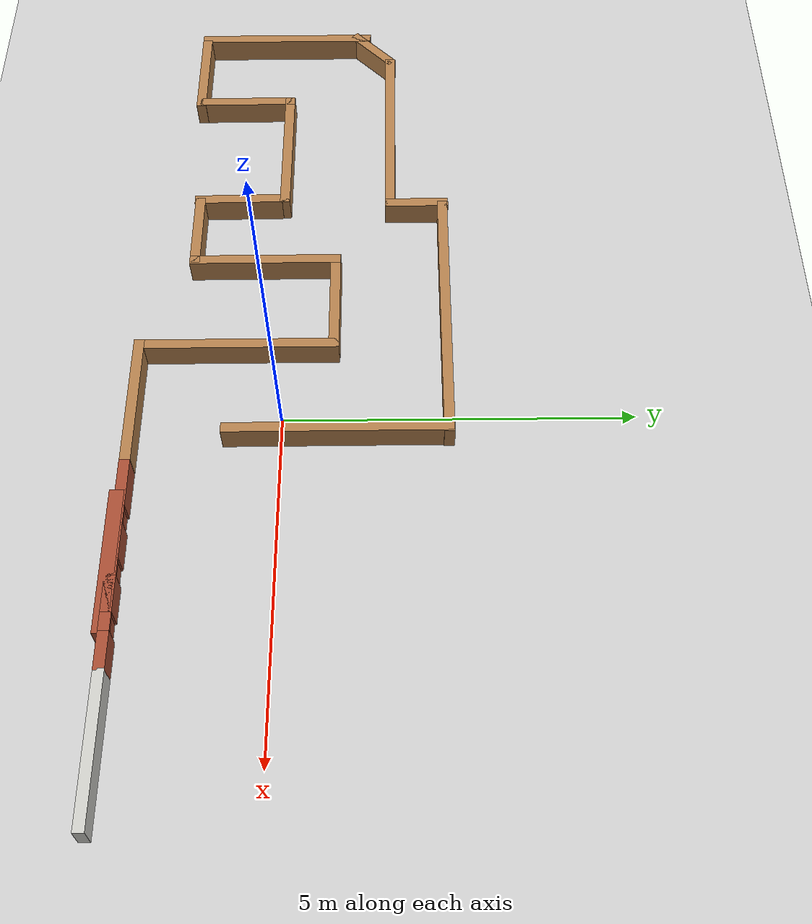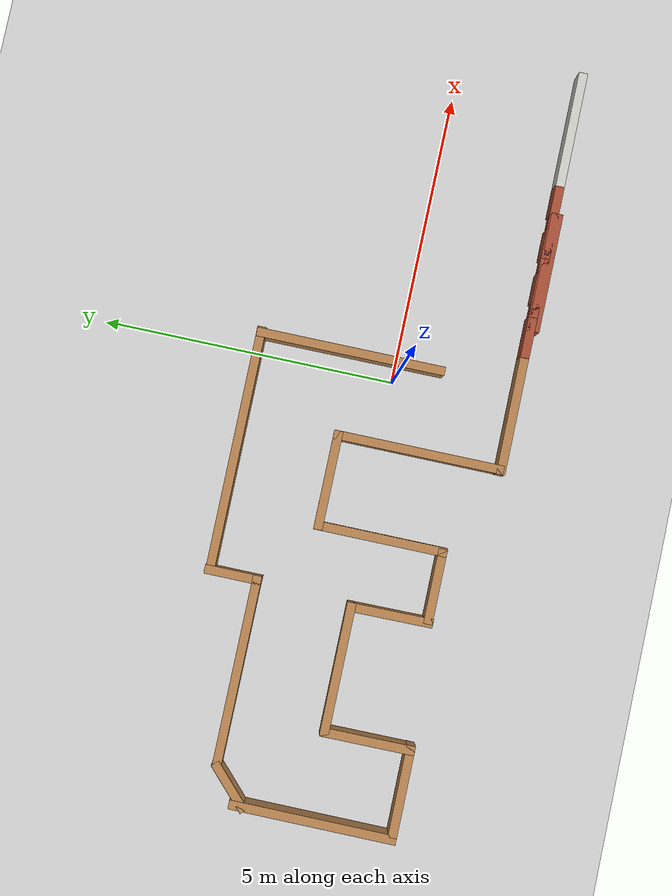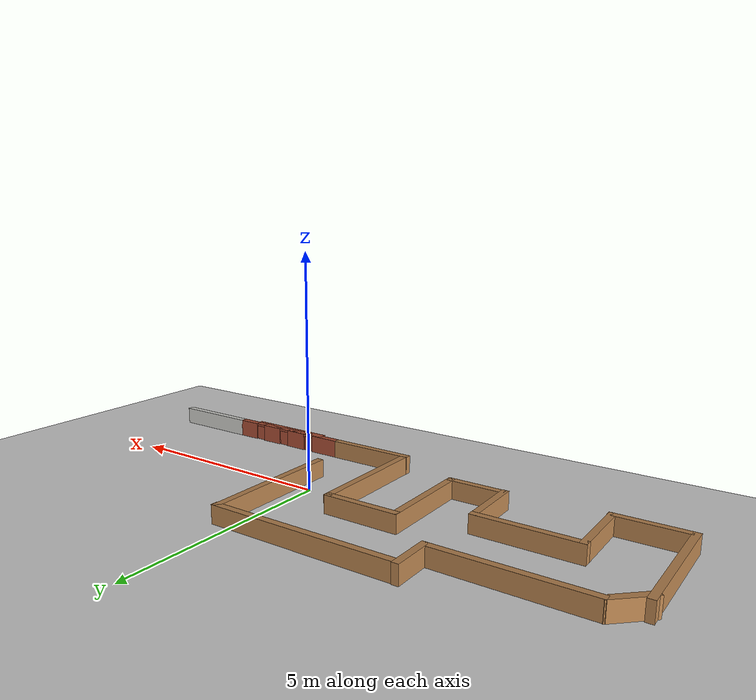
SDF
<sdf version="1.7">
	<world name="default">
		<!-- A global light source -->
		<include>
			<uri>model://sun</uri>
		</include>

		<!-- A ground plane -->
		<include>
			<uri>model://ground_plane</uri>
		</include>

		<include>
			<uri>model://maze3</uri>
		</include>

		<include>
			<uri>model://door</uri>
		</include>

		<include>
			<uri>model://last_wall</uri>
		</include>

		<include>
			<uri>model://cover</uri>
		</include>

	</world>
</sdf>

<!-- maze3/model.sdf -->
<sdf version='1.7'>
  <model name='maze3'>
    <link name='Wall_0'>
      <pose>-0.157684 -2.0677 0 0 -0 3.14159</pose>
      <self_collide>0</self_collide>
      <enable_wind>0</enable_wind>
      <kinematic>0</kinematic>
      <visual name='Wall_0_Visual'>
        <pose>0 0 0.2 0 -0 0</pose>
        <geometry>
          <box>
            <size>2 0.15 0.4</size>
          </box>
        </geometry>
        <material>
          <script>
            <uri>file://media/materials/scripts/gazebo.material</uri>
            <name>Gazebo/Wood</name>
          </script>
          <ambient>1 1 1 1</ambient>
          <shader type='pixel'/>
        </material>
        <meta>
          <layer>0</layer>
        </meta>
        <transparency>0</transparency>
        <cast_shadows>1</cast_shadows>
      </visual>
      <collision name='Wall_0_Collision'>
        <laser_retro>0</laser_retro>
        <max_contacts>10</max_contacts>
        <pose>0 0 0.2 0 -0 0</pose>
        <geometry>
          <box>
            <size>2 0.15 0.4</size>
          </box>
        </geometry>
        <surface>
          <friction>
            <ode>
              <mu>1</mu>
              <mu2>1</mu2>
              <fdir1>0 0 0</fdir1>
              <slip1>0</slip1>
              <slip2>0</slip2>
            </ode>
            <torsional>
              <coefficient>1</coefficient>
              <patch_radius>0</patch_radius>
              <surface_radius>0</surface_radius>
              <use_patch_radius>1</use_patch_radius>
              <ode>
                <slip>0</slip>
              </ode>
            </torsional>
          </friction>
          <bounce>
            <restitution_coefficient>0</restitution_coefficient>
            <threshold>1e+06</threshold>
          </bounce>
          <contact>
            <collide_without_contact>0</collide_without_contact>
            <collide_without_contact_bitmask>1</collide_without_contact_bitmask>
            <collide_bitmask>1</collide_bitmask>
            <ode>
              <soft_cfm>0</soft_cfm>
              <soft_erp>0.2</soft_erp>
              <kp>1e+13</kp>
              <kd>1</kd>
              <max_vel>0.01</max_vel>
              <min_depth>0</min_depth>
            </ode>
            <bullet>
              <split_impulse>1</split_impulse>
              <split_impulse_penetration_threshold>-0.01</split_impulse_penetration_threshold>
              <soft_cfm>0</soft_cfm>
              <soft_erp>0.2</soft_erp>
              <kp>1e+13</kp>
              <kd>1</kd>
            </bullet>
          </contact>
        </surface>
      </collision>
    </link>
    <link name='Wall_10'>
      <pose>-7.39504 -0.201105 0 0 -0 1.5708</pose>
      <self_collide>0</self_collide>
      <enable_wind>0</enable_wind>
      <kinematic>0</kinematic>
      <inertial>
        <inertia>
          <ixx>0</ixx>
          <ixy>0</ixy>
          <ixz>0</ixz>
          <iyy>0</iyy>
          <iyz>0</iyz>
          <izz>0</izz>
        </inertia>
        <mass>0</mass>
        <pose>0 0 0 0 -0 0</pose>
      </inertial>
      <visual name='Wall_10_Visual'>
        <pose>0 0 0.2 0 -0 0</pose>
        <geometry>
          <box>
            <size>2.81281 0.15 0.4</size>
          </box>
        </geometry>
        <material>
          <script>
            <uri>file://media/materials/scripts/gazebo.material</uri>
            <name>Gazebo/Wood</name>
          </script>
          <ambient>1 1 1 1</ambient>
          <shader type='pixel'/>
        </material>
        <meta>
          <layer>0</layer>
        </meta>
        <transparency>0</transparency>
        <cast_shadows>1</cast_shadows>
      </visual>
      <collision name='Wall_10_Collision'>
        <laser_retro>0</laser_retro>
        <max_contacts>10</max_contacts>
        <pose>0 0 0.2 0 -0 0</pose>
        <geometry>
          <box>
            <size>2.81281 0.15 0.4</size>
          </box>
        </geometry>
        <surface>
          <friction>
            <ode>
              <mu>1</mu>
              <mu2>1</mu2>
              <fdir1>0 0 0</fdir1>
              <slip1>0</slip1>
              <slip2>0</slip2>
            </ode>
            <torsional>
              <coefficient>1</coefficient>
              <patch_radius>0</patch_radius>
              <surface_radius>0</surface_radius>
              <use_patch_radius>1</use_patch_radius>
              <ode>
                <slip>0</slip>
              </ode>
            </torsional>
          </friction>
          <bounce>
            <restitution_coefficient>0</restitution_coefficient>
            <threshold>1e+06</threshold>
          </bounce>
          <contact>
            <collide_without_contact>0</collide_without_contact>
            <collide_without_contact_bitmask>1</collide_without_contact_bitmask>
            <collide_bitmask>1</collide_bitmask>
            <ode>
              <soft_cfm>0</soft_cfm>
              <soft_erp>0.2</soft_erp>
              <kp>1e+13</kp>
              <kd>1</kd>
              <max_vel>0.01</max_vel>
              <min_depth>0</min_depth>
            </ode>
            <bullet>
              <split_impulse>1</split_impulse>
              <split_impulse_penetration_threshold>-0.01</split_impulse_penetration_threshold>
              <soft_cfm>0</soft_cfm>
              <soft_erp>0.2</soft_erp>
              <kp>1e+13</kp>
              <kd>1</kd>
            </bullet>
          </contact>
        </surface>
      </collision>
    </link>
    <link name='Wall_11'>
      <pose>-5.25603 1.53381 0 0 -0 0</pose>
      <self_collide>0</self_collide>
      <enable_wind>0</enable_wind>
      <kinematic>0</kinematic>
      <inertial>
        <inertia>
          <ixx>0</ixx>
          <ixy>0</ixy>
          <ixz>0</ixz>
          <iyy>0</iyy>
          <iyz>0</iyz>
          <izz>0</izz>
        </inertia>
        <mass>0</mass>
        <pose>0 0 0 0 -0 0</pose>
      </inertial>
      <visual name='Wall_11_Visual'>
        <pose>0 0 0.2 0 -0 0</pose>
        <geometry>
          <box>
            <size>3.22734 0.15 0.4</size>
          </box>
        </geometry>
        <material>
          <script>
            <uri>file://media/materials/scripts/gazebo.material</uri>
            <name>Gazebo/Wood</name>
          </script>
          <ambient>1 1 1 1</ambient>
          <shader type='pixel'/>
        </material>
        <meta>
          <layer>0</layer>
        </meta>
        <transparency>0</transparency>
        <cast_shadows>1</cast_shadows>
      </visual>
      <collision name='Wall_11_Collision'>
        <laser_retro>0</laser_retro>
        <max_contacts>10</max_contacts>
        <pose>0 0 0.2 0 -0 0</pose>
        <geometry>
          <box>
            <size>3.22734 0.15 0.4</size>
          </box>
        </geometry>
        <surface>
          <friction>
            <ode>
              <mu>1</mu>
              <mu2>1</mu2>
              <fdir1>0 0 0</fdir1>
              <slip1>0</slip1>
              <slip2>0</slip2>
            </ode>
            <torsional>
              <coefficient>1</coefficient>
              <patch_radius>0</patch_radius>
              <surface_radius>0</surface_radius>
              <use_patch_radius>1</use_patch_radius>
              <ode>
                <slip>0</slip>
              </ode>
            </torsional>
          </friction>
          <bounce>
            <restitution_coefficient>0</restitution_coefficient>
            <threshold>1e+06</threshold>
          </bounce>
          <contact>
            <collide_without_contact>0</collide_without_contact>
            <collide_without_contact_bitmask>1</collide_without_contact_bitmask>
            <collide_bitmask>1</collide_bitmask>
            <ode>
              <soft_cfm>0</soft_cfm>
              <soft_erp>0.2</soft_erp>
              <kp>1e+13</kp>
              <kd>1</kd>
              <max_vel>0.01</max_vel>
              <min_depth>0</min_depth>
            </ode>
            <bullet>
              <split_impulse>1</split_impulse>
              <split_impulse_penetration_threshold>-0.01</split_impulse_penetration_threshold>
              <soft_cfm>0</soft_cfm>
              <soft_erp>0.2</soft_erp>
              <kp>1e+13</kp>
              <kd>1</kd>
            </bullet>
          </contact>
        </surface>
      </collision>
    </link>
    <link name='Wall_12'>
      <pose>-3.7155 1.93947 0 0 -0 1.5708</pose>
      <self_collide>0</self_collide>
      <enable_wind>0</enable_wind>
      <kinematic>0</kinematic>
      <inertial>
        <inertia>
          <ixx>0</ixx>
          <ixy>0</ixy>
          <ixz>0</ixz>
          <iyy>0</iyy>
          <iyz>0</iyz>
          <izz>0</izz>
        </inertia>
        <mass>0</mass>
        <pose>0 0 0 0 -0 0</pose>
      </inertial>
      <visual name='Wall_12_Visual'>
        <pose>0 0 0.2 0 -0 0</pose>
        <geometry>
          <box>
            <size>0.965198 0.15 0.4</size>
          </box>
        </geometry>
        <material>
          <script>
            <uri>file://media/materials/scripts/gazebo.material</uri>
            <name>Gazebo/Wood</name>
          </script>
          <ambient>1 1 1 1</ambient>
          <shader type='pixel'/>
        </material>
        <meta>
          <layer>0</layer>
        </meta>
        <transparency>0</transparency>
        <cast_shadows>1</cast_shadows>
      </visual>
      <collision name='Wall_12_Collision'>
        <laser_retro>0</laser_retro>
        <max_contacts>10</max_contacts>
        <pose>0 0 0.2 0 -0 0</pose>
        <geometry>
          <box>
            <size>0.965198 0.15 0.4</size>
          </box>
        </geometry>
        <surface>
          <friction>
            <ode>
              <mu>1</mu>
              <mu2>1</mu2>
              <fdir1>0 0 0</fdir1>
              <slip1>0</slip1>
              <slip2>0</slip2>
            </ode>
            <torsional>
              <coefficient>1</coefficient>
              <patch_radius>0</patch_radius>
              <surface_radius>0</surface_radius>
              <use_patch_radius>1</use_patch_radius>
              <ode>
                <slip>0</slip>
              </ode>
            </torsional>
          </friction>
          <bounce>
            <restitution_coefficient>0</restitution_coefficient>
            <threshold>1e+06</threshold>
          </bounce>
          <contact>
            <collide_without_contact>0</collide_without_contact>
            <collide_without_contact_bitmask>1</collide_without_contact_bitmask>
            <collide_bitmask>1</collide_bitmask>
            <ode>
              <soft_cfm>0</soft_cfm>
              <soft_erp>0.2</soft_erp>
              <kp>1e+13</kp>
              <kd>1</kd>
              <max_vel>0.01</max_vel>
              <min_depth>0</min_depth>
            </ode>
            <bullet>
              <split_impulse>1</split_impulse>
              <split_impulse_penetration_threshold>-0.01</split_impulse_penetration_threshold>
              <soft_cfm>0</soft_cfm>
              <soft_erp>0.2</soft_erp>
              <kp>1e+13</kp>
              <kd>1</kd>
            </bullet>
          </contact>
        </surface>
      </collision>
    </link>
    <link name='Wall_13'>
      <pose>-1.64529 2.34002 0 0 -0 0.003738</pose>
      <self_collide>0</self_collide>
      <enable_wind>0</enable_wind>
      <kinematic>0</kinematic>
      <inertial>
        <inertia>
          <ixx>0</ixx>
          <ixy>0</ixy>
          <ixz>0</ixz>
          <iyy>0</iyy>
          <iyz>0</iyz>
          <izz>0</izz>
        </inertia>
        <mass>0</mass>
        <pose>0 0 0 0 -0 0</pose>
      </inertial>
      <visual name='Wall_13_Visual'>
        <pose>0 0 0.2 0 -0 0</pose>
        <geometry>
          <box>
            <size>4.16604 0.15 0.4</size>
          </box>
        </geometry>
        <material>
          <script>
            <uri>file://media/materials/scripts/gazebo.material</uri>
            <name>Gazebo/Wood</name>
          </script>
          <ambient>1 1 1 1</ambient>
          <shader type='pixel'/>
        </material>
        <meta>
          <layer>0</layer>
        </meta>
        <transparency>0</transparency>
        <cast_shadows>1</cast_shadows>
      </visual>
      <collision name='Wall_13_Collision'>
        <laser_retro>0</laser_retro>
        <max_contacts>10</max_contacts>
        <pose>0 0 0.2 0 -0 0</pose>
        <geometry>
          <box>
            <size>4.16604 0.15 0.4</size>
          </box>
        </geometry>
        <surface>
          <friction>
            <ode>
              <mu>1</mu>
              <mu2>1</mu2>
              <fdir1>0 0 0</fdir1>
              <slip1>0</slip1>
              <slip2>0</slip2>
            </ode>
            <torsional>
              <coefficient>1</coefficient>
              <patch_radius>0</patch_radius>
              <surface_radius>0</surface_radius>
              <use_patch_radius>1</use_patch_radius>
              <ode>
                <slip>0</slip>
              </ode>
            </torsional>
          </friction>
          <bounce>
            <restitution_coefficient>0</restitution_coefficient>
            <threshold>1e+06</threshold>
          </bounce>
          <contact>
            <collide_without_contact>0</collide_without_contact>
            <collide_without_contact_bitmask>1</collide_without_contact_bitmask>
            <collide_bitmask>1</collide_bitmask>
            <ode>
              <soft_cfm>0</soft_cfm>
              <soft_erp>0.2</soft_erp>
              <kp>1e+13</kp>
              <kd>1</kd>
              <max_vel>0.01</max_vel>
              <min_depth>0</min_depth>
            </ode>
            <bullet>
              <split_impulse>1</split_impulse>
              <split_impulse_penetration_threshold>-0.01</split_impulse_penetration_threshold>
              <soft_cfm>0</soft_cfm>
              <soft_erp>0.2</soft_erp>
              <kp>1e+13</kp>
              <kd>1</kd>
            </bullet>
          </contact>
        </surface>
      </collision>
    </link>
    <link name='Wall_14'>
      <pose>0.341716 0.804884 0 0 0 -1.5708</pose>
      <self_collide>0</self_collide>
      <enable_wind>0</enable_wind>
      <kinematic>0</kinematic>
      <inertial>
        <inertia>
          <ixx>0</ixx>
          <ixy>0</ixy>
          <ixz>0</ixz>
          <iyy>0</iyy>
          <iyz>0</iyz>
          <izz>0</izz>
        </inertia>
        <mass>0</mass>
        <pose>0 0 0 0 -0 0</pose>
      </inertial>
      <visual name='Wall_14_Visual'>
        <pose>0 0 0.2 0 -0 0</pose>
        <geometry>
          <box>
            <size>3.2278 0.15 0.4</size>
          </box>
        </geometry>
        <material>
          <script>
            <uri>file://media/materials/scripts/gazebo.material</uri>
            <name>Gazebo/Wood</name>
          </script>
          <ambient>1 1 1 1</ambient>
          <shader type='pixel'/>
        </material>
        <meta>
          <layer>0</layer>
        </meta>
        <transparency>0</transparency>
        <cast_shadows>1</cast_shadows>
      </visual>
      <collision name='Wall_14_Collision'>
        <laser_retro>0</laser_retro>
        <max_contacts>10</max_contacts>
        <pose>0 0 0.2 0 -0 0</pose>
        <geometry>
          <box>
            <size>3.2278 0.15 0.4</size>
          </box>
        </geometry>
        <surface>
          <friction>
            <ode>
              <mu>1</mu>
              <mu2>1</mu2>
              <fdir1>0 0 0</fdir1>
              <slip1>0</slip1>
              <slip2>0</slip2>
            </ode>
            <torsional>
              <coefficient>1</coefficient>
              <patch_radius>0</patch_radius>
              <surface_radius>0</surface_radius>
              <use_patch_radius>1</use_patch_radius>
              <ode>
                <slip>0</slip>
              </ode>
            </torsional>
          </friction>
          <bounce>
            <restitution_coefficient>0</restitution_coefficient>
            <threshold>1e+06</threshold>
          </bounce>
          <contact>
            <collide_without_contact>0</collide_without_contact>
            <collide_without_contact_bitmask>1</collide_without_contact_bitmask>
            <collide_bitmask>1</collide_bitmask>
            <ode>
              <soft_cfm>0</soft_cfm>
              <soft_erp>0.2</soft_erp>
              <kp>1e+13</kp>
              <kd>1</kd>
              <max_vel>0.01</max_vel>
              <min_depth>0</min_depth>
            </ode>
            <bullet>
              <split_impulse>1</split_impulse>
              <split_impulse_penetration_threshold>-0.01</split_impulse_penetration_threshold>
              <soft_cfm>0</soft_cfm>
              <soft_erp>0.2</soft_erp>
              <kp>1e+13</kp>
              <kd>1</kd>
            </bullet>
          </contact>
        </surface>
      </collision>
    </link>
    <link name='Wall_2'>
      <pose>-1.07512 -0.657211 0 0 -0 1.5708</pose>
      <self_collide>0</self_collide>
      <enable_wind>0</enable_wind>
      <kinematic>0</kinematic>
      <inertial>
        <inertia>
          <ixx>0</ixx>
          <ixy>0</ixy>
          <ixz>0</ixz>
          <iyy>0</iyy>
          <iyz>0</iyz>
          <izz>0</izz>
        </inertia>
        <mass>0</mass>
        <pose>0 0 0 0 -0 0</pose>
      </inertial>
      <visual name='Wall_2_Visual'>
        <pose>0 0 0.2 0 -0 0</pose>
        <geometry>
          <box>
            <size>2.90393 0.15 0.4</size>
          </box>
        </geometry>
        <material>
          <script>
            <uri>file://media/materials/scripts/gazebo.material</uri>
            <name>Gazebo/Wood</name>
          </script>
          <ambient>1 1 1 1</ambient>
          <shader type='pixel'/>
        </material>
        <meta>
          <layer>0</layer>
        </meta>
        <transparency>0</transparency>
        <cast_shadows>1</cast_shadows>
      </visual>
      <collision name='Wall_2_Collision'>
        <laser_retro>0</laser_retro>
        <max_contacts>10</max_contacts>
        <pose>0 0 0.2 0 -0 0</pose>
        <geometry>
          <box>
            <size>2.90393 0.15 0.4</size>
          </box>
        </geometry>
        <surface>
          <friction>
            <ode>
              <mu>1</mu>
              <mu2>1</mu2>
              <fdir1>0 0 0</fdir1>
              <slip1>0</slip1>
              <slip2>0</slip2>
            </ode>
            <torsional>
              <coefficient>1</coefficient>
              <patch_radius>0</patch_radius>
              <surface_radius>0</surface_radius>
              <use_patch_radius>1</use_patch_radius>
              <ode>
                <slip>0</slip>
              </ode>
            </torsional>
          </friction>
          <bounce>
            <restitution_coefficient>0</restitution_coefficient>
            <threshold>1e+06</threshold>
          </bounce>
          <contact>
            <collide_without_contact>0</collide_without_contact>
            <collide_without_contact_bitmask>1</collide_without_contact_bitmask>
            <collide_bitmask>1</collide_bitmask>
            <ode>
              <soft_cfm>0</soft_cfm>
              <soft_erp>0.2</soft_erp>
              <kp>1e+13</kp>
              <kd>1</kd>
              <max_vel>0.01</max_vel>
              <min_depth>0</min_depth>
            </ode>
            <bullet>
              <split_impulse>1</split_impulse>
              <split_impulse_penetration_threshold>-0.01</split_impulse_penetration_threshold>
              <soft_cfm>0</soft_cfm>
              <soft_erp>0.2</soft_erp>
              <kp>1e+13</kp>
              <kd>1</kd>
            </bullet>
          </contact>
        </surface>
      </collision>
    </link>
    <link name='Wall_3'>
      <pose>-1.84655 0.720131 0 0 -0 3.14159</pose>
      <self_collide>0</self_collide>
      <enable_wind>0</enable_wind>
      <kinematic>0</kinematic>
      <inertial>
        <inertia>
          <ixx>0</ixx>
          <ixy>0</ixy>
          <ixz>0</ixz>
          <iyy>0</iyy>
          <iyz>0</iyz>
          <izz>0</izz>
        </inertia>
        <mass>0</mass>
        <pose>0 0 0 0 -0 0</pose>
      </inertial>
      <visual name='Wall_3_Visual'>
        <pose>0 0 0.2 0 -0 0</pose>
        <geometry>
          <box>
            <size>1.68458 0.15 0.4</size>
          </box>
        </geometry>
        <material>
          <script>
            <uri>file://media/materials/scripts/gazebo.material</uri>
            <name>Gazebo/Wood</name>
          </script>
          <ambient>1 1 1 1</ambient>
          <shader type='pixel'/>
        </material>
        <meta>
          <layer>0</layer>
        </meta>
        <transparency>0</transparency>
        <cast_shadows>1</cast_shadows>
      </visual>
      <collision name='Wall_3_Collision'>
        <laser_retro>0</laser_retro>
        <max_contacts>10</max_contacts>
        <pose>0 0 0.2 0 -0 0</pose>
        <geometry>
          <box>
            <size>1.68458 0.15 0.4</size>
          </box>
        </geometry>
        <surface>
          <friction>
            <ode>
              <mu>1</mu>
              <mu2>1</mu2>
              <fdir1>0 0 0</fdir1>
              <slip1>0</slip1>
              <slip2>0</slip2>
            </ode>
            <torsional>
              <coefficient>1</coefficient>
              <patch_radius>0</patch_radius>
              <surface_radius>0</surface_radius>
              <use_patch_radius>1</use_patch_radius>
              <ode>
                <slip>0</slip>
              </ode>
            </torsional>
          </friction>
          <bounce>
            <restitution_coefficient>0</restitution_coefficient>
            <threshold>1e+06</threshold>
          </bounce>
          <contact>
            <collide_without_contact>0</collide_without_contact>
            <collide_without_contact_bitmask>1</collide_without_contact_bitmask>
            <collide_bitmask>1</collide_bitmask>
            <ode>
              <soft_cfm>0</soft_cfm>
              <soft_erp>0.2</soft_erp>
              <kp>1e+13</kp>
              <kd>1</kd>
              <max_vel>0.01</max_vel>
              <min_depth>0</min_depth>
            </ode>
            <bullet>
              <split_impulse>1</split_impulse>
              <split_impulse_penetration_threshold>-0.01</split_impulse_penetration_threshold>
              <soft_cfm>0</soft_cfm>
              <soft_erp>0.2</soft_erp>
              <kp>1e+13</kp>
              <kd>1</kd>
            </bullet>
          </contact>
        </surface>
      </collision>
    </link>
    <link name='Wall_4'>
      <pose>-2.61827 -0.336537 0 0 0 -1.5708</pose>
      <self_collide>0</self_collide>
      <enable_wind>0</enable_wind>
      <kinematic>0</kinematic>
      <inertial>
        <inertia>
          <ixx>0</ixx>
          <ixy>0</ixy>
          <ixz>0</ixz>
          <iyy>0</iyy>
          <iyz>0</iyz>
          <izz>0</izz>
        </inertia>
        <mass>0</mass>
        <pose>0 0 0 0 -0 0</pose>
      </inertial>
      <visual name='Wall_4_Visual'>
        <pose>0 0 0.2 0 -0 0</pose>
        <geometry>
          <box>
            <size>2.2567 0.15 0.4</size>
          </box>
        </geometry>
        <material>
          <script>
            <uri>file://media/materials/scripts/gazebo.material</uri>
            <name>Gazebo/Wood</name>
          </script>
          <ambient>1 1 1 1</ambient>
          <shader type='pixel'/>
        </material>
        <meta>
          <layer>0</layer>
        </meta>
        <transparency>0</transparency>
        <cast_shadows>1</cast_shadows>
      </visual>
      <collision name='Wall_4_Collision'>
        <laser_retro>0</laser_retro>
        <max_contacts>10</max_contacts>
        <pose>0 0 0.2 0 -0 0</pose>
        <geometry>
          <box>
            <size>2.2567 0.15 0.4</size>
          </box>
        </geometry>
        <surface>
          <friction>
            <ode>
              <mu>1</mu>
              <mu2>1</mu2>
              <fdir1>0 0 0</fdir1>
              <slip1>0</slip1>
              <slip2>0</slip2>
            </ode>
            <torsional>
              <coefficient>1</coefficient>
              <patch_radius>0</patch_radius>
              <surface_radius>0</surface_radius>
              <use_patch_radius>1</use_patch_radius>
              <ode>
                <slip>0</slip>
              </ode>
            </torsional>
          </friction>
          <bounce>
            <restitution_coefficient>0</restitution_coefficient>
            <threshold>1e+06</threshold>
          </bounce>
          <contact>
            <collide_without_contact>0</collide_without_contact>
            <collide_without_contact_bitmask>1</collide_without_contact_bitmask>
            <collide_bitmask>1</collide_bitmask>
            <ode>
              <soft_cfm>0</soft_cfm>
              <soft_erp>0.2</soft_erp>
              <kp>1e+13</kp>
              <kd>1</kd>
              <max_vel>0.01</max_vel>
              <min_depth>0</min_depth>
            </ode>
            <bullet>
              <split_impulse>1</split_impulse>
              <split_impulse_penetration_threshold>-0.01</split_impulse_penetration_threshold>
              <soft_cfm>0</soft_cfm>
              <soft_erp>0.2</soft_erp>
              <kp>1e+13</kp>
              <kd>1</kd>
            </bullet>
          </contact>
        </surface>
      </collision>
    </link>
    <link name='Wall_5'>
      <pose>-3.2005 -1.38993 0 0 -0 3.14159</pose>
      <self_collide>0</self_collide>
      <enable_wind>0</enable_wind>
      <kinematic>0</kinematic>
      <inertial>
        <inertia>
          <ixx>0</ixx>
          <ixy>0</ixy>
          <ixz>0</ixz>
          <iyy>0</iyy>
          <iyz>0</iyz>
          <izz>0</izz>
        </inertia>
        <mass>0</mass>
        <pose>0 0 0 0 -0 0</pose>
      </inertial>
      <visual name='Wall_5_Visual'>
        <pose>0 0 0.2 0 -0 0</pose>
        <geometry>
          <box>
            <size>1.26662 0.15 0.4</size>
          </box>
        </geometry>
        <material>
          <script>
            <uri>file://media/materials/scripts/gazebo.material</uri>
            <name>Gazebo/Wood</name>
          </script>
          <ambient>1 1 1 1</ambient>
          <shader type='pixel'/>
        </material>
        <meta>
          <layer>0</layer>
        </meta>
        <transparency>0</transparency>
        <cast_shadows>1</cast_shadows>
      </visual>
      <collision name='Wall_5_Collision'>
        <laser_retro>0</laser_retro>
        <max_contacts>10</max_contacts>
        <pose>0 0 0.2 0 -0 0</pose>
        <geometry>
          <box>
            <size>1.26662 0.15 0.4</size>
          </box>
        </geometry>
        <surface>
          <friction>
            <ode>
              <mu>1</mu>
              <mu2>1</mu2>
              <fdir1>0 0 0</fdir1>
              <slip1>0</slip1>
              <slip2>0</slip2>
            </ode>
            <torsional>
              <coefficient>1</coefficient>
              <patch_radius>0</patch_radius>
              <surface_radius>0</surface_radius>
              <use_patch_radius>1</use_patch_radius>
              <ode>
                <slip>0</slip>
              </ode>
            </torsional>
          </friction>
          <bounce>
            <restitution_coefficient>0</restitution_coefficient>
            <threshold>1e+06</threshold>
          </bounce>
          <contact>
            <collide_without_contact>0</collide_without_contact>
            <collide_without_contact_bitmask>1</collide_without_contact_bitmask>
            <collide_bitmask>1</collide_bitmask>
            <ode>
              <soft_cfm>0</soft_cfm>
              <soft_erp>0.2</soft_erp>
              <kp>1e+13</kp>
              <kd>1</kd>
              <max_vel>0.01</max_vel>
              <min_depth>0</min_depth>
            </ode>
            <bullet>
              <split_impulse>1</split_impulse>
              <split_impulse_penetration_threshold>-0.01</split_impulse_penetration_threshold>
              <soft_cfm>0</soft_cfm>
              <soft_erp>0.2</soft_erp>
              <kp>1e+13</kp>
              <kd>1</kd>
            </bullet>
          </contact>
        </surface>
      </collision>
    </link>
    <link name='Wall_6'>
      <pose>-3.81693 -0.748232 0 0 -0 1.58161</pose>
      <self_collide>0</self_collide>
      <enable_wind>0</enable_wind>
      <kinematic>0</kinematic>
      <inertial>
        <inertia>
          <ixx>0</ixx>
          <ixy>0</ixy>
          <ixz>0</ixz>
          <iyy>0</iyy>
          <iyz>0</iyz>
          <izz>0</izz>
        </inertia>
        <mass>0</mass>
        <pose>0 0 0 0 -0 0</pose>
      </inertial>
      <visual name='Wall_6_Visual'>
        <pose>0 0 0.2 0 -0 0</pose>
        <geometry>
          <box>
            <size>1.45573 0.15 0.4</size>
          </box>
        </geometry>
        <material>
          <script>
            <uri>file://media/materials/scripts/gazebo.material</uri>
            <name>Gazebo/Wood</name>
          </script>
          <ambient>1 1 1 1</ambient>
          <shader type='pixel'/>
        </material>
        <meta>
          <layer>0</layer>
        </meta>
        <transparency>0</transparency>
        <cast_shadows>1</cast_shadows>
      </visual>
      <collision name='Wall_6_Collision'>
        <laser_retro>0</laser_retro>
        <max_contacts>10</max_contacts>
        <pose>0 0 0.2 0 -0 0</pose>
        <geometry>
          <box>
            <size>1.45573 0.15 0.4</size>
          </box>
        </geometry>
        <surface>
          <friction>
            <ode>
              <mu>1</mu>
              <mu2>1</mu2>
              <fdir1>0 0 0</fdir1>
              <slip1>0</slip1>
              <slip2>0</slip2>
            </ode>
            <torsional>
              <coefficient>1</coefficient>
              <patch_radius>0</patch_radius>
              <surface_radius>0</surface_radius>
              <use_patch_radius>1</use_patch_radius>
              <ode>
                <slip>0</slip>
              </ode>
            </torsional>
          </friction>
          <bounce>
            <restitution_coefficient>0</restitution_coefficient>
            <threshold>1e+06</threshold>
          </bounce>
          <contact>
            <collide_without_contact>0</collide_without_contact>
            <collide_without_contact_bitmask>1</collide_without_contact_bitmask>
            <collide_bitmask>1</collide_bitmask>
            <ode>
              <soft_cfm>0</soft_cfm>
              <soft_erp>0.2</soft_erp>
              <kp>1e+13</kp>
              <kd>1</kd>
              <max_vel>0.01</max_vel>
              <min_depth>0</min_depth>
            </ode>
            <bullet>
              <split_impulse>1</split_impulse>
              <split_impulse_penetration_threshold>-0.01</split_impulse_penetration_threshold>
              <soft_cfm>0</soft_cfm>
              <soft_erp>0.2</soft_erp>
              <kp>1e+13</kp>
              <kd>1</kd>
            </bullet>
          </contact>
        </surface>
      </collision>
    </link>
    <link name='Wall_7'>
      <pose>-4.87359 -0.08943 0 0 -0 3.14159</pose>
      <self_collide>0</self_collide>
      <enable_wind>0</enable_wind>
      <kinematic>0</kinematic>
      <visual name='Wall_7_Visual'>
        <pose>0 0 0.2 0 -0 0</pose>
        <geometry>
          <box>
            <size>2.25 0.15 0.4</size>
          </box>
        </geometry>
        <material>
          <script>
            <uri>file://media/materials/scripts/gazebo.material</uri>
            <name>Gazebo/Wood</name>
          </script>
          <ambient>1 1 1 1</ambient>
          <shader type='pixel'/>
        </material>
        <meta>
          <layer>0</layer>
        </meta>
        <transparency>0</transparency>
        <cast_shadows>1</cast_shadows>
      </visual>
      <collision name='Wall_7_Collision'>
        <laser_retro>0</laser_retro>
        <max_contacts>10</max_contacts>
        <pose>0 0 0.2 0 -0 0</pose>
        <geometry>
          <box>
            <size>2.25 0.15 0.4</size>
          </box>
        </geometry>
        <surface>
          <friction>
            <ode>
              <mu>1</mu>
              <mu2>1</mu2>
              <fdir1>0 0 0</fdir1>
              <slip1>0</slip1>
              <slip2>0</slip2>
            </ode>
            <torsional>
              <coefficient>1</coefficient>
              <patch_radius>0</patch_radius>
              <surface_radius>0</surface_radius>
              <use_patch_radius>1</use_patch_radius>
              <ode>
                <slip>0</slip>
              </ode>
            </torsional>
          </friction>
          <bounce>
            <restitution_coefficient>0</restitution_coefficient>
            <threshold>1e+06</threshold>
          </bounce>
          <contact>
            <collide_without_contact>0</collide_without_contact>
            <collide_without_contact_bitmask>1</collide_without_contact_bitmask>
            <collide_bitmask>1</collide_bitmask>
            <ode>
              <soft_cfm>0</soft_cfm>
              <soft_erp>0.2</soft_erp>
              <kp>1e+13</kp>
              <kd>1</kd>
              <max_vel>0.01</max_vel>
              <min_depth>0</min_depth>
            </ode>
            <bullet>
              <split_impulse>1</split_impulse>
              <split_impulse_penetration_threshold>-0.01</split_impulse_penetration_threshold>
              <soft_cfm>0</soft_cfm>
              <soft_erp>0.2</soft_erp>
              <kp>1e+13</kp>
              <kd>1</kd>
            </bullet>
          </contact>
        </surface>
      </collision>
    </link>
    <link name='Wall_8'>
      <pose>-5.91786 -0.810561 0 0 0 -1.56483</pose>
      <self_collide>0</self_collide>
      <enable_wind>0</enable_wind>
      <kinematic>0</kinematic>
      <inertial>
        <inertia>
          <ixx>0</ixx>
          <ixy>0</ixy>
          <ixz>0</ixz>
          <iyy>0</iyy>
          <iyz>0</iyz>
          <izz>0</izz>
        </inertia>
        <mass>0</mass>
        <pose>0 0 0 0 -0 0</pose>
      </inertial>
      <visual name='Wall_8_Visual'>
        <pose>0 0 0.2 0 -0 0</pose>
        <geometry>
          <box>
            <size>1.58846 0.15 0.4</size>
          </box>
        </geometry>
        <material>
          <script>
            <uri>file://media/materials/scripts/gazebo.material</uri>
            <name>Gazebo/Wood</name>
          </script>
          <ambient>1 1 1 1</ambient>
          <shader type='pixel'/>
        </material>
        <meta>
          <layer>0</layer>
        </meta>
        <transparency>0</transparency>
        <cast_shadows>1</cast_shadows>
      </visual>
      <collision name='Wall_8_Collision'>
        <laser_retro>0</laser_retro>
        <max_contacts>10</max_contacts>
        <pose>0 0 0.2 0 -0 0</pose>
        <geometry>
          <box>
            <size>1.58846 0.15 0.4</size>
          </box>
        </geometry>
        <surface>
          <friction>
            <ode>
              <mu>1</mu>
              <mu2>1</mu2>
              <fdir1>0 0 0</fdir1>
              <slip1>0</slip1>
              <slip2>0</slip2>
            </ode>
            <torsional>
              <coefficient>1</coefficient>
              <patch_radius>0</patch_radius>
              <surface_radius>0</surface_radius>
              <use_patch_radius>1</use_patch_radius>
              <ode>
                <slip>0</slip>
              </ode>
            </torsional>
          </friction>
          <bounce>
            <restitution_coefficient>0</restitution_coefficient>
            <threshold>1e+06</threshold>
          </bounce>
          <contact>
            <collide_without_contact>0</collide_without_contact>
            <collide_without_contact_bitmask>1</collide_without_contact_bitmask>
            <collide_bitmask>1</collide_bitmask>
            <ode>
              <soft_cfm>0</soft_cfm>
              <soft_erp>0.2</soft_erp>
              <kp>1e+13</kp>
              <kd>1</kd>
              <max_vel>0.01</max_vel>
              <min_depth>0</min_depth>
            </ode>
            <bullet>
              <split_impulse>1</split_impulse>
              <split_impulse_penetration_threshold>-0.01</split_impulse_penetration_threshold>
              <soft_cfm>0</soft_cfm>
              <soft_erp>0.2</soft_erp>
              <kp>1e+13</kp>
              <kd>1</kd>
            </bullet>
          </contact>
        </surface>
      </collision>
    </link>
    <link name='Wall_9'>
      <pose>-6.59891 -1.53477 0 0 -0 3.14159</pose>
      <self_collide>0</self_collide>
      <enable_wind>0</enable_wind>
      <kinematic>0</kinematic>
      <inertial>
        <inertia>
          <ixx>0</ixx>
          <ixy>0</ixy>
          <ixz>0</ixz>
          <iyy>0</iyy>
          <iyz>0</iyz>
          <izz>0</izz>
        </inertia>
        <mass>0</mass>
        <pose>0 0 0 0 -0 0</pose>
      </inertial>
      <visual name='Wall_9_Visual'>
        <pose>0 0 0.2 0 -0 0</pose>
        <geometry>
          <box>
            <size>1.52761 0.15 0.4</size>
          </box>
        </geometry>
        <material>
          <script>
            <uri>file://media/materials/scripts/gazebo.material</uri>
            <name>Gazebo/Wood</name>
          </script>
          <ambient>1 1 1 1</ambient>
          <shader type='pixel'/>
        </material>
        <meta>
          <layer>0</layer>
        </meta>
        <transparency>0</transparency>
        <cast_shadows>1</cast_shadows>
      </visual>
      <collision name='Wall_9_Collision'>
        <laser_retro>0</laser_retro>
        <max_contacts>10</max_contacts>
        <pose>0 0 0.2 0 -0 0</pose>
        <geometry>
          <box>
            <size>1.52761 0.15 0.4</size>
          </box>
        </geometry>
        <surface>
          <friction>
            <ode>
              <mu>1</mu>
              <mu2>1</mu2>
              <fdir1>0 0 0</fdir1>
              <slip1>0</slip1>
              <slip2>0</slip2>
            </ode>
            <torsional>
              <coefficient>1</coefficient>
              <patch_radius>0</patch_radius>
              <surface_radius>0</surface_radius>
              <use_patch_radius>1</use_patch_radius>
              <ode>
                <slip>0</slip>
              </ode>
            </torsional>
          </friction>
          <bounce>
            <restitution_coefficient>0</restitution_coefficient>
            <threshold>1e+06</threshold>
          </bounce>
          <contact>
            <collide_without_contact>0</collide_without_contact>
            <collide_without_contact_bitmask>1</collide_without_contact_bitmask>
            <collide_bitmask>1</collide_bitmask>
            <ode>
              <soft_cfm>0</soft_cfm>
              <soft_erp>0.2</soft_erp>
              <kp>1e+13</kp>
              <kd>1</kd>
              <max_vel>0.01</max_vel>
              <min_depth>0</min_depth>
            </ode>
            <bullet>
              <split_impulse>1</split_impulse>
              <split_impulse_penetration_threshold>-0.01</split_impulse_penetration_threshold>
              <soft_cfm>0</soft_cfm>
              <soft_erp>0.2</soft_erp>
              <kp>1e+13</kp>
              <kd>1</kd>
            </bullet>
          </contact>
        </surface>
      </collision>
    </link>
    <link name='Wall_9_clone'>
      <pose>-7.12565 1.2513 0 0 -0 -2.37684</pose>
      <self_collide>0</self_collide>
      <enable_wind>0</enable_wind>
      <kinematic>0</kinematic>
      <inertial>
        <inertia>
          <ixx>0</ixx>
          <ixy>0</ixy>
          <ixz>0</ixz>
          <iyy>0</iyy>
          <iyz>0</iyz>
          <izz>0</izz>
        </inertia>
        <mass>0</mass>
        <pose>0 0 0 0 -0 0</pose>
      </inertial>
      <visual name='Wall_9_Visual'>
        <pose>0 0 0.2 0 -0 0</pose>
        <geometry>
          <box>
            <size>0.920325 0.15 0.4</size>
          </box>
        </geometry>
        <material>
          <script>
            <uri>file://media/materials/scripts/gazebo.material</uri>
            <name>Gazebo/Wood</name>
          </script>
          <ambient>1 1 1 1</ambient>
          <shader type='pixel'/>
        </material>
        <meta>
          <layer>0</layer>
        </meta>
        <transparency>0</transparency>
        <cast_shadows>1</cast_shadows>
      </visual>
      <collision name='Wall_9_Collision'>
        <laser_retro>0</laser_retro>
        <max_contacts>10</max_contacts>
        <pose>0 0 0.2 0 -0 0</pose>
        <geometry>
          <box>
            <size>0.920325 0.15 0.4</size>
          </box>
        </geometry>
        <surface>
          <friction>
            <ode>
              <mu>1</mu>
              <mu2>1</mu2>
              <fdir1>0 0 0</fdir1>
              <slip1>0</slip1>
              <slip2>0</slip2>
            </ode>
            <torsional>
              <coefficient>1</coefficient>
              <patch_radius>0</patch_radius>
              <surface_radius>0</surface_radius>
              <use_patch_radius>1</use_patch_radius>
              <ode>
                <slip>0</slip>
              </ode>
            </torsional>
          </friction>
          <bounce>
            <restitution_coefficient>0</restitution_coefficient>
            <threshold>1e+06</threshold>
          </bounce>
          <contact>
            <collide_without_contact>0</collide_without_contact>
            <collide_without_contact_bitmask>1</collide_without_contact_bitmask>
            <collide_bitmask>1</collide_bitmask>
            <ode>
              <soft_cfm>0</soft_cfm>
              <soft_erp>0.2</soft_erp>
              <kp>1e+13</kp>
              <kd>1</kd>
              <max_vel>0.01</max_vel>
              <min_depth>0</min_depth>
            </ode>
            <bullet>
              <split_impulse>1</split_impulse>
              <split_impulse_penetration_threshold>-0.01</split_impulse_penetration_threshold>
              <soft_cfm>0</soft_cfm>
              <soft_erp>0.2</soft_erp>
              <kp>1e+13</kp>
              <kd>1</kd>
            </bullet>
          </contact>
        </surface>
      </collision>
    </link>
    <static>1</static>
    <allow_auto_disable>1</allow_auto_disable>
  </model>
</sdf>

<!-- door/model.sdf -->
<sdf version='1.7'>
  <model name='door'>
    <pose>1.9225 -1.0725 0 0 -0 0</pose>
    <link name='Wall_2'>
      <pose>0.4225 -0.9975 0 0 -0 0</pose>
      <visual name='Wall_2_Visual_0'>
        <pose>-1.15 0 0.2 0 -0 0</pose>
        <geometry>
          <box>
            <size>0.7 0.15 0.4</size>
          </box>
        </geometry>
        <material>
          <script>
            <uri>file://media/materials/scripts/gazebo.material</uri>
            <name>Gazebo/Bricks</name>
          </script>
          <ambient>1 1 1 1</ambient>
        </material>
        <meta>
          <layer>0</layer>
        </meta>
      </visual>
      <collision name='Wall_2_Collision_0'>
        <geometry>
          <box>
            <size>0.7 0.15 0.4</size>
          </box>
        </geometry>
        <pose>-1.15 0 0.2 0 -0 0</pose>
      </collision>
      <visual name='Wall_2_Visual_1'>
        <pose>-0.29 0 0.2 0 -0 0</pose>
        <geometry>
          <box>
            <size>0.52 0.15 0.4</size>
          </box>
        </geometry>
        <material>
          <script>
            <uri>file://media/materials/scripts/gazebo.material</uri>
            <name>Gazebo/Bricks</name>
          </script>
          <ambient>1 1 1 1</ambient>
        </material>
        <meta>
          <layer>0</layer>
        </meta>
      </visual>
      <collision name='Wall_2_Collision_1'>
        <geometry>
          <box>
            <size>0.52 0.15 0.4</size>
          </box>
        </geometry>
        <pose>-0.29 0 0.2 0 -0 0</pose>
      </collision>
      <visual name='Wall_2_Visual_2'>
        <pose>0.475 0 0.2 0 -0 0</pose>
        <geometry>
          <box>
            <size>0.51 0.15 0.4</size>
          </box>
        </geometry>
        <material>
          <script>
            <uri>file://media/materials/scripts/gazebo.material</uri>
            <name>Gazebo/Bricks</name>
          </script>
          <ambient>1 1 1 1</ambient>
        </material>
        <meta>
          <layer>0</layer>
        </meta>
      </visual>
      <collision name='Wall_2_Collision_2'>
        <geometry>
          <box>
            <size>0.51 0.15 0.4</size>
          </box>
        </geometry>
        <pose>0.475 0 0.2 0 -0 0</pose>
      </collision>
      <visual name='Wall_2_Visual_3'>
        <pose>1.24 0 0.2 0 -0 0</pose>
        <geometry>
          <box>
            <size>0.52 0.15 0.4</size>
          </box>
        </geometry>
        <material>
          <script>
            <uri>file://media/materials/scripts/gazebo.material</uri>
            <name>Gazebo/Bricks</name>
          </script>
          <ambient>1 1 1 1</ambient>
        </material>
        <meta>
          <layer>0</layer>
        </meta>
      </visual>
      <collision name='Wall_2_Collision_3'>
        <geometry>
          <box>
            <size>0.52 0.15 0.4</size>
          </box>
        </geometry>
        <pose>1.24 0 0.2 0 -0 0</pose>
      </collision>
      <visual name='Wall_2_Visual_4'>
        <pose>-0.675 0 0.375 0 -0 0</pose>
        <geometry>
          <box>
            <size>0.25 0.15 0.05</size>
          </box>
        </geometry>
        <material>
          <script>
            <uri>file://media/materials/scripts/gazebo.material</uri>
            <name>Gazebo/Bricks</name>
          </script>
          <ambient>1 1 1 1</ambient>
        </material>
        <meta>
          <layer>0</layer>
        </meta>
      </visual>
      <collision name='Wall_2_Collision_4'>
        <geometry>
          <box>
            <size>0.25 0.15 0.05</size>
          </box>
        </geometry>
        <pose>-0.675 0 0.375 0 -0 0</pose>
      </collision>
      <visual name='Wall_2_Visual_5'>
        <pose>0.095 0 0.375 0 -0 0</pose>
        <geometry>
          <box>
            <size>0.25 0.15 0.05</size>
          </box>
        </geometry>
        <material>
          <script>
            <uri>file://media/materials/scripts/gazebo.material</uri>
            <name>Gazebo/Bricks</name>
          </script>
          <ambient>1 1 1 1</ambient>
        </material>
        <meta>
          <layer>0</layer>
        </meta>
      </visual>
      <collision name='Wall_2_Collision_5'>
        <geometry>
          <box>
            <size>0.25 0.15 0.05</size>
          </box>
        </geometry>
        <pose>0.095 0 0.375 0 -0 0</pose>
      </collision>
      <visual name='Wall_2_Visual_6'>
        <pose>0.855 0 0.375 0 -0 0</pose>
        <geometry>
          <box>
            <size>0.25 0.15 0.05</size>
          </box>
        </geometry>
        <material>
          <script>
            <uri>file://media/materials/scripts/gazebo.material</uri>
            <name>Gazebo/Bricks</name>
          </script>
          <ambient>1 1 1 1</ambient>
        </material>
        <meta>
          <layer>0</layer>
        </meta>
      </visual>
      <collision name='Wall_2_Collision_6'>
        <geometry>
          <box>
            <size>0.25 0.15 0.05</size>
          </box>
        </geometry>
        <pose>0.855 0 0.375 0 -0 0</pose>
      </collision>
    </link>
    <static>1</static>
  </model>
</sdf>

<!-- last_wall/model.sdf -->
<sdf version='1.7'>
  <model name='last_wall'>
    <pose>2.9125 -1.0725 0 0 -0 0</pose>
    <link name='Wall_0'>
      <collision name='Wall_0_Collision'>
        <geometry>
          <box>
            <size>2 0.15 0.4</size>
          </box>
        </geometry>
        <pose>0 0 0.2 0 -0 0</pose>
      </collision>
      <visual name='Wall_0_Visual'>
        <pose>0 0 0.2 0 -0 0</pose>
        <geometry>
          <box>
            <size>2 0.15 0.4</size>
          </box>
        </geometry>
        <material>
          <script>
            <uri>file://media/materials/scripts/gazebo.material</uri>
            <name>Gazebo/CeilingTiled</name>
          </script>
          <ambient>1 1 1 1</ambient>
        </material>
        <meta>
          <layer>0</layer>
        </meta>
      </visual>
      <pose>1.9125 -0.9975 0 0 -0 0</pose>
    </link>
    <static>1</static>
  </model>
</sdf>

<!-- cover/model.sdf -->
<sdf version='1.7'>
  <model name='cover'>
    <pose>1.68 -1.11 0 0 -0 0</pose>
    <link name='Wall_2'>
      <collision name='Wall_2_Collision'>
        <geometry>
          <box>
            <size>2.05 0.2 0.4</size>
          </box>
        </geometry>
        <pose>0 0 0.2 0 -0 0</pose>
      </collision>
      <visual name='Wall_2_Visual'>
        <pose>0 0 0.2 0 -0 0</pose>
        <geometry>
          <box>
            <size>2.05 0.2 0.4</size>
          </box>
        </geometry>
        <material>
          <script>
            <uri>file://media/materials/scripts/gazebo.material</uri>
            <name>Gazebo/Bricks</name>
          </script>
          <ambient>1 1 1 1</ambient>
        </material>
        <meta>
          <layer>0</layer>
        </meta>
      </visual>
      <pose>0.655 -1.01 0 0 -0 0</pose>
    </link>
    <static>1</static>
  </model>
</sdf>
